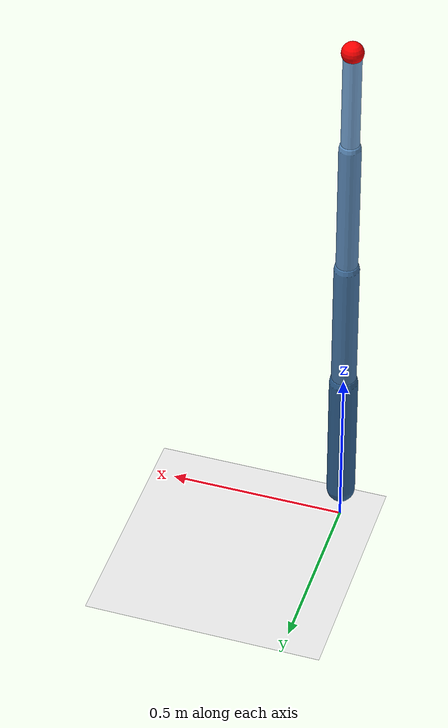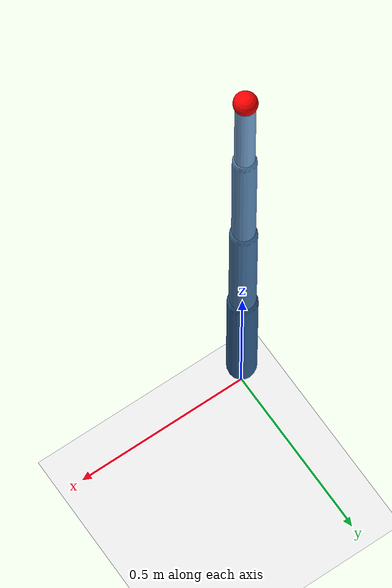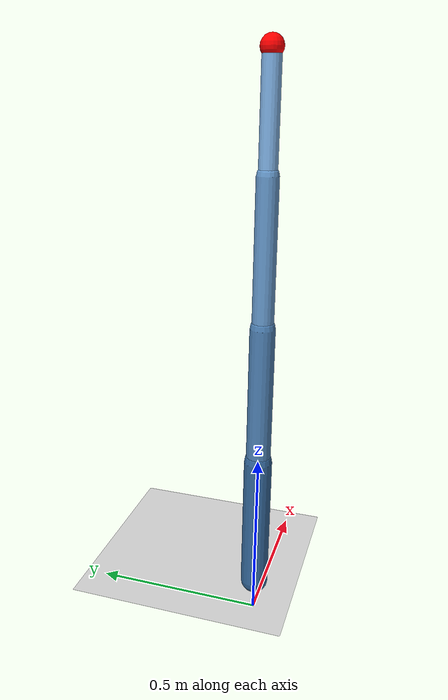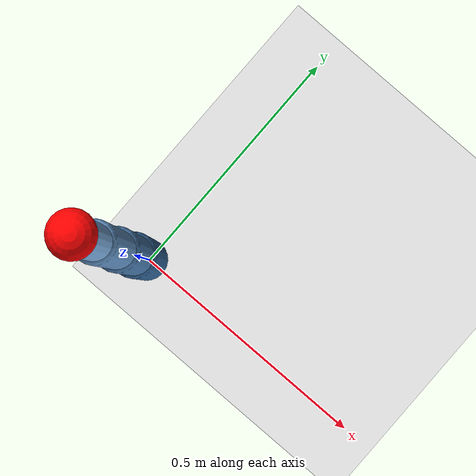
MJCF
<mujoco model="planar_4dof_arm">
    <option gravity="0 0 0" timestep="0.002"/>

    <worldbody>
        <camera name="top" pos="0 -3 1" xyaxes="1 0 0 0 0 1"/>

        <geom name="floor" type="plane" size="5 5 0.1" rgba="0.9 0.9 0.9 1"/>

        <body name="link1" pos="0 0 0.1">
            <geom name="g1" type="capsule" fromto="0 0 0 0 0 0.4" size="0.04" rgba="0.2 0.4 0.6 1"/>
            <joint name="joint1" type="hinge" axis="0 1 0" pos="0 0 0"/>

            <body name="link2" pos="0 0 0.4">
                <geom name="g2" type="capsule" fromto="0 0 0 0 0 0.4" size="0.035" rgba="0.3 0.5 0.7 1"/>
                <joint name="joint2" type="hinge" axis="0 1 0" pos="0 0 0"/>

                <body name="link3" pos="0 0 0.4">
                    <geom name="g3" type="capsule" fromto="0 0 0 0 0 0.4" size="0.03" rgba="0.4 0.6 0.8 1"/>
                    <joint name="joint3" type="hinge" axis="0 1 0" pos="0 0 0"/>

                    <body name="link4" pos="0 0 0.4">
                        <geom name="g4" type="capsule" fromto="0 0 0 0 0 0.3" size="0.025" rgba="0.5 0.7 0.9 1"/>
                        <joint name="joint4" type="hinge" axis="0 1 0" pos="0 0 0"/>

                        <body name="ee" pos="0 0 0.3">
                            <site name="tip" pos="0 0 0" size="0.03" rgba="1 0 0 1"/>
                        </body>
                    </body>
                </body>
            </body>
        </body>
    </worldbody>
</mujoco>
